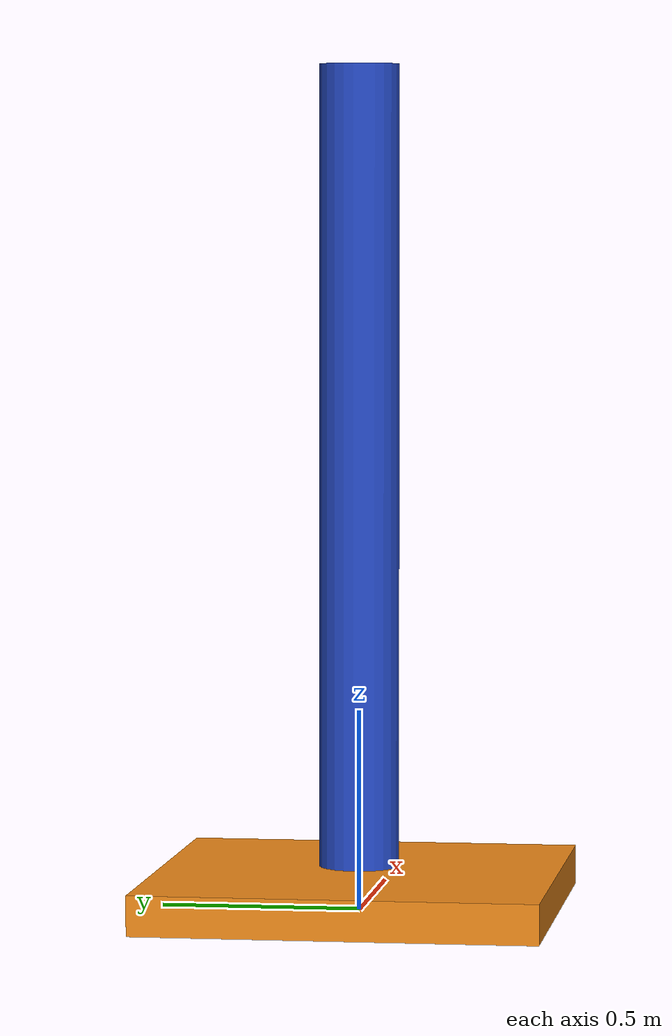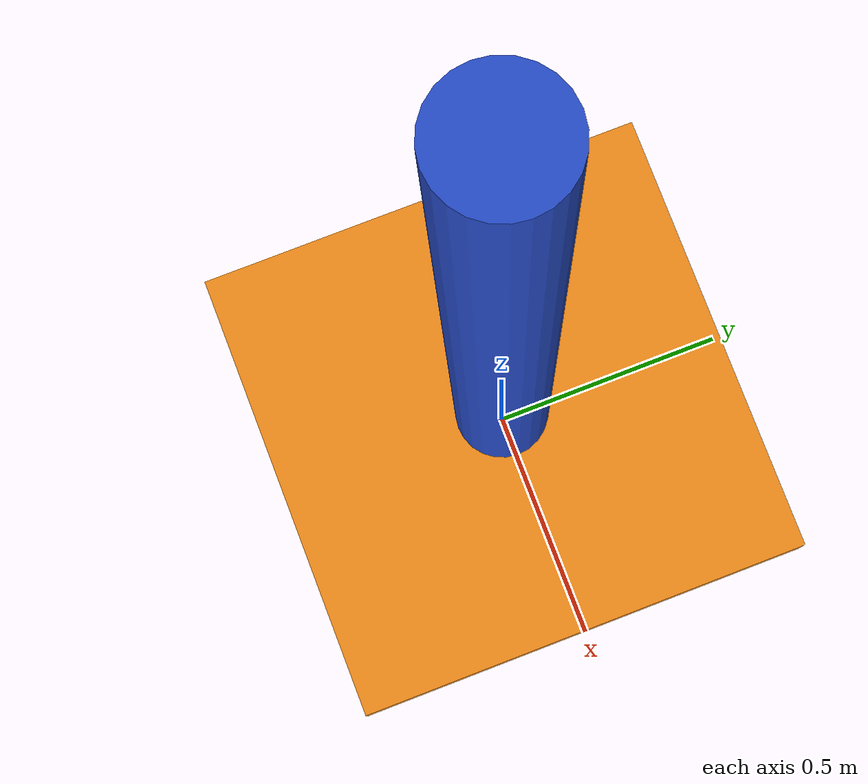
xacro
<?xml version="1.0"?>
<!-- Revolute-Revolute Manipulator -->
<robot name="vawt_1" xmlns:xacro="http://www.ros.org/wiki/xacro">

  <!-- Constants for robot dimensions -->
  <xacro:property name="mass" value="1" /> <!-- arbitrary value for mass -->

  <!-- Import all Gazebo-customization elements, including Gazebo colors -->
  <xacro:include filename="$(find vawt_1)/urdf/vawt_1.gazebo" />
  <!-- Import Rviz colors -->
  <xacro:include filename="$(find vawt_1)/urdf/materials.xacro" />

  <xacro:include filename="$(find vawt_1)/urdf/macros/box_link.xacro" />
  <xacro:include filename="$(find vawt_1)/urdf/macros/cylinder_link.xacro" />
  <xacro:include filename="$(find vawt_1)/urdf/macros/blade_w_struts.xacro" />

  <!-- Used for fixing robot to Gazebo 'base_link' -->
  <link name="world"/>

  <joint name="fixed" type="fixed">
    <parent link="world"/>
    <child link="base"/>
  </joint>

  <!-- Base Link -->
  <xacro:property name="base_width" value="1" />
  <xacro:property name="base_height" value="1" />
  <xacro:property name="base_depth" value="0.1" />

  <xacro:box_link link_name="base" width="${base_width}" height="${base_height}" depth="${base_depth}"
    xyz="0 0 ${base_depth/2}" rpy="0 0 0" material="orange" mass="${mass}"/>

  <joint name="main_shaft_joint" type="continuous">
    <parent link="base"/>
    <child link="main_shaft"/>
    <origin xyz="0 0 ${base_depth + 0.01}"/>
    <axis xyz="0 0 1" />
    <dynamics damping="0" friction="1"/>
  </joint>

  <!-- main_shaft Link -->
  <xacro:property name="ms_radius" value="0.1" />
  <xacro:property name="ms_length" value="2" />
  <xacro:property name="shaft_name" value="main_shaft" />

  <xacro:cylinder_link link_name="${shaft_name}" length="${ms_length}" radius="${ms_radius}"
    xyz="0 0 ${ms_length/2}" rpy="0 0 0" material="blue" mass="${mass}"/>

</robot>

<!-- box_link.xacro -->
<robot xmlns:xacro="http://www.ros.org/wiki/xacro">

  <xacro:macro name="box_link"
  params="link_name width height depth xyz rpy material mass">
    <link name="${link_name}">
      <collision>
        <origin xyz="${xyz}" rpy="${rpy}"/>
        <geometry>
          <box size="${width} ${height} ${depth}"/>
        </geometry>
      </collision>

      <visual>
        <origin xyz="${xyz}" rpy="${rpy}"/>
        <geometry>
          <box size="${width} ${height} ${depth}"/>
        </geometry>
        <material name="${material}"/>
      </visual>

      <inertial>
        <origin xyz="${xyz}" rpy="${rpy}"/>
        <mass value="${mass}"/>
        <inertia
        ixx="${mass / 12.0 * (height*height + depth*depth)}" ixy="0.0" ixz="0.0"
        iyy="${mass / 12.0 * (width*width + depth*depth)}" iyz="0.0"
        izz="${mass / 12.0 * (width*width + height*height)}"/>
      </inertial>
    </link>
  </xacro:macro>
</robot>

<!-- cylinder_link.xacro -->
<robot xmlns:xacro="http://www.ros.org/wiki/xacro">

  <xacro:macro name="cylinder_link"
  params="link_name length radius xyz rpy material mass">
    <link name="${link_name}">
      <collision>
        <origin xyz="${xyz}" rpy="${rpy}"/>
        <geometry>
          <cylinder length="${length}" radius="${radius}"/>
        </geometry>
      </collision>

      <visual>
        <origin xyz="${xyz}" rpy="${rpy}"/>
        <geometry>
          <cylinder length="${length}" radius="${radius}"/>
        </geometry>
        <material name="${material}"/>
      </visual>

      <inertial>
        <origin xyz="${xyz}" rpy="${rpy}"/>
        <mass value="${mass}"/>
        <inertia
          ixx="${mass / 12.0 * (3*radius*radius + length*length)}" ixy="0.0" ixz="0.0"
          iyy="${mass / 12.0 * (3*radius*radius + length*length)}" iyz="0.0"
          izz="${mass / 2.0 * radius*radius}"/>
        </inertial>
    </link>
  </xacro:macro>
</robot>
